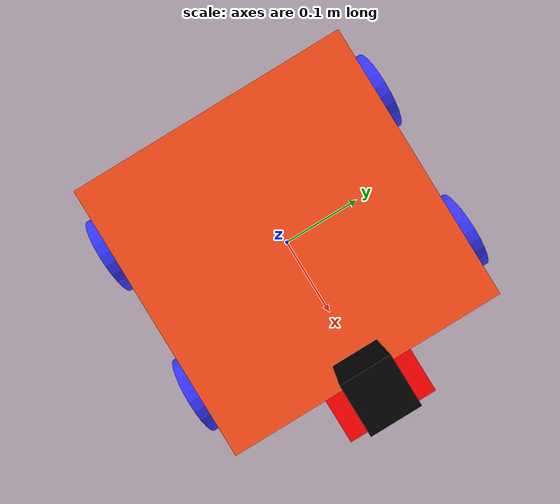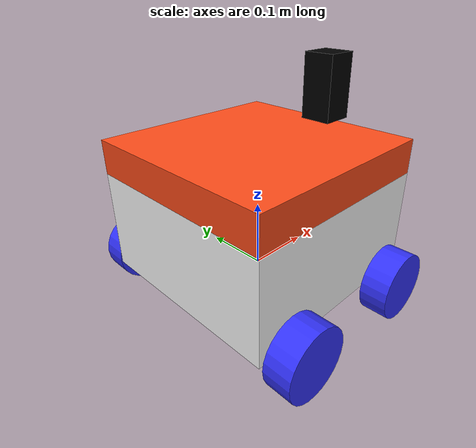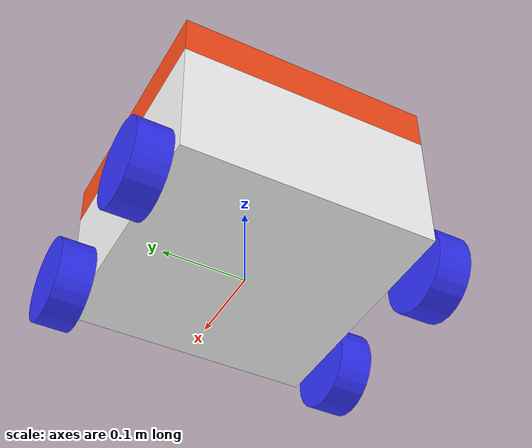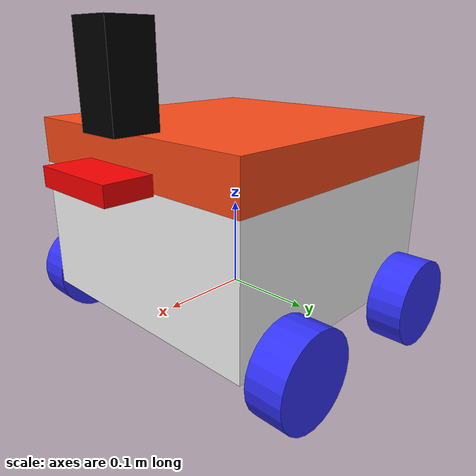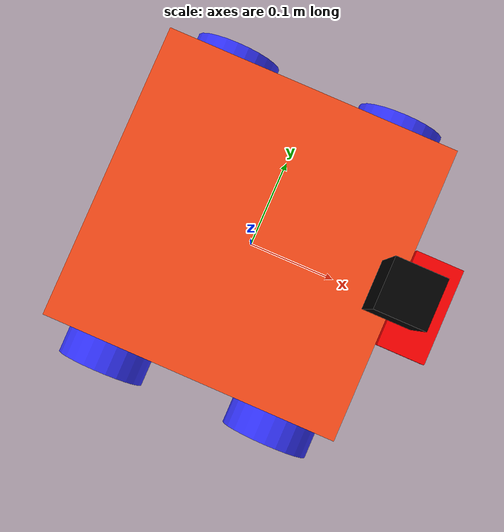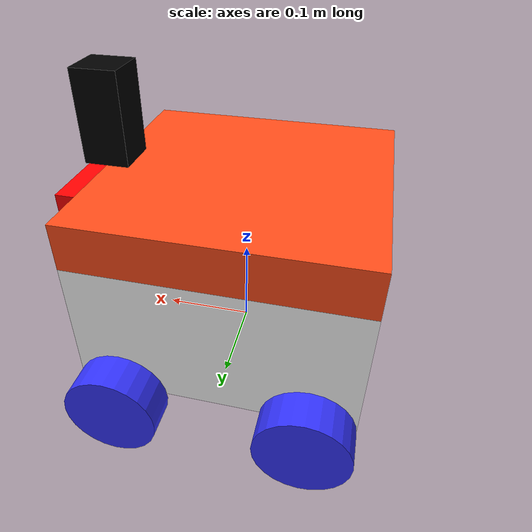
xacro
<?xml version="1.0"?>
<robot xmlns:xacro="http://www.ros.org/wiki/xacro" >

    <xacro:include filename="inertial_macros.xacro"/>

    <material name="white">
        <color rgba="1 1 1 1" />
    </material>

    <material name="orange">
        <color rgba="1 0.3 0.1 1"/>
    </material>

    <material name="blue">
        <color rgba="0.2 0.2 1 1"/>
    </material>

    <material name="black">
        <color rgba="0 0 0 1"/>
    </material>

    <material name="red">
        <color rgba="1 0 0 1"/>
    </material>

    <!-- BASE LINK -->
    <link name="base_link"></link>

    <!-- CHASSIS LINK -->
    <joint name="chassis_joint" type="fixed">
        <parent link="base_link"/>
        <child link="chassis"/>
        <origin xyz="0 0 0"/>
    </joint>

    <link name="chassis">
        <visual>
            <origin xyz="0 0 0.075"/>
            <geometry>
                <box size="0.3 0.3 0.15"/>
            </geometry>
            <material name="white"/>
        </visual>
    </link>

    <!-- WHEELS -->
    <joint name="left_wheel_joint" type="continuous">
        <parent link="base_link"/>
        <child link="left_wheel"/>
        <origin xyz="0.1 0.175 0" rpy="-${pi/2} 0 0" />
        <axis xyz="0 0 1"/>
    </joint>

    <link name="left_wheel">
        <visual>
            <geometry>
                <cylinder radius="0.05" length="0.04"/>
            </geometry>
            <material name="blue"/>
        </visual>
    </link>

    <joint name="right_wheel_joint" type="continuous">
        <parent link="base_link"/>
        <child link="right_wheel"/>
        <origin xyz="0.1 -0.175 0" rpy="${pi/2} 0 0" />
        <axis xyz="0 0 -1"/>
    </joint>

    <link name="right_wheel">
        <visual>
            <geometry>
                <cylinder radius="0.05" length="0.04"/>
            </geometry>
            <material name="blue"/>
        </visual>
    </link>

    <!-- NEW FRONT WHEELS -->
    <joint name="front_left_wheel_joint" type="continuous">
        <parent link="base_link"/>
        <child link="front_left_wheel"/>
        <origin xyz="-0.1 0.175 0" rpy="-${pi/2} 0 0" />
        <axis xyz="0 0 1"/>
    </joint>

    <link name="front_left_wheel">
        <visual>
            <geometry>
                <cylinder radius="0.05" length="0.04"/>
            </geometry>
            <material name="blue"/>
        </visual>
    </link>

    <joint name="front_right_wheel_joint" type="continuous">
        <parent link="base_link"/>
        <child link="front_right_wheel"/>
        <origin xyz="-0.1 -0.175 0" rpy="${pi/2} 0 0" />
        <axis xyz="0 0 -1"/>
    </joint>

    <link name="front_right_wheel">
        <visual>
            <geometry>
                <cylinder radius="0.05" length="0.04"/>
            </geometry>
            <material name="blue"/>
        </visual>
    </link>

    <!-- BASKET HOLDER -->
    <link name="basket_holder">
        <visual>
            <origin xyz="0 0 0.025"/> <!-- Position ajustée pour être directement sur le châssis -->
            <geometry>
                <box size="0.3 0.3 0.05"/>
            </geometry>
            <material name="orange"/>
        </visual>
    </link>

    <joint name="basket_holder_joint" type="fixed">
        <parent link="chassis"/>
        <child link="basket_holder"/>
        <origin xyz="0 0 0.15"/> <!-- Position du panier fixée sur le châssis -->
    </joint>

    <!-- CAMERA HOLDER -->
    <link name="camera_mount">
        <visual>
            <origin xyz="0 0 0"/> <!-- La caméra sera juste au-dessus du panier -->
            <geometry>
                <box size="0.05 0.05 0.1"/>
            </geometry>
            <material name="black"/>
        </visual>
    </link>

    <joint name="camera_mount_joint" type="fixed">
        <parent link="basket_holder"/>
        <child link="camera_mount"/>
        <origin xyz="0.15 0 0.1"/> <!-- La caméra positionnée juste au-dessus du panier -->
    </joint>

    <!-- LIGHTS -->
    <link name="front_lights">
        <visual>
            <origin xyz="0 0 0"/> <!-- Lumières positionnées sous la caméra -->
            <geometry>
                <box size="0.05 0.1 0.02"/>
            </geometry>
            <material name="red"/>
        </visual>
    </link>

    <joint name="front_lights_joint" type="fixed">
        <parent link="basket_holder"/>
        <child link="front_lights"/>
        <origin xyz="0.18 0 0.01"/> <!-- Les lumières attachées au panier -->
    </joint>

</robot>
